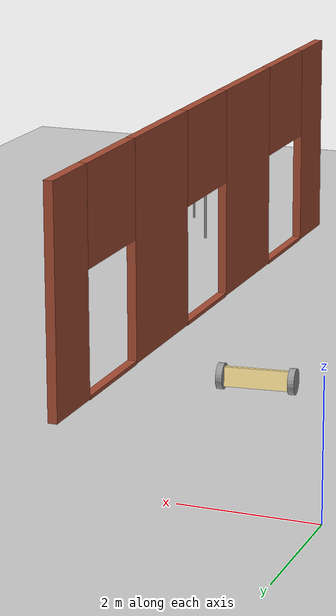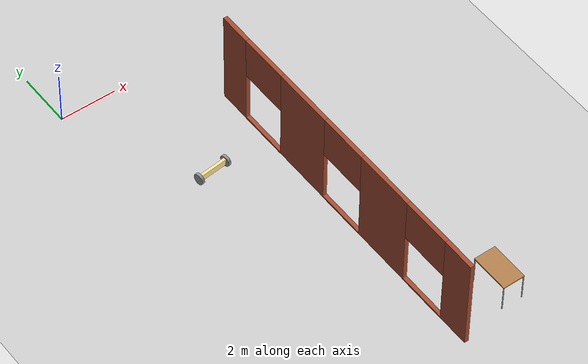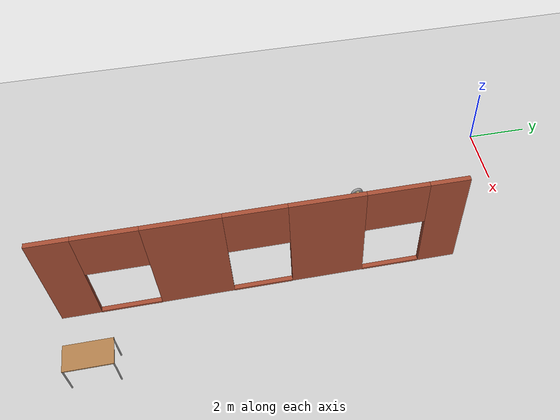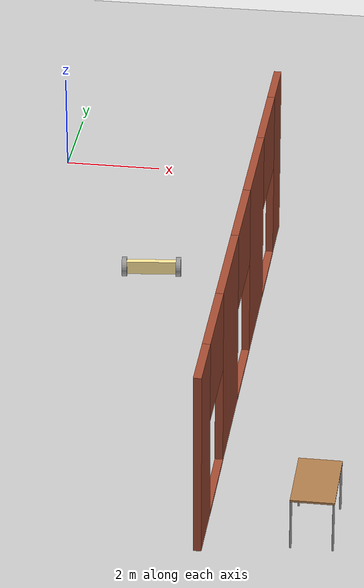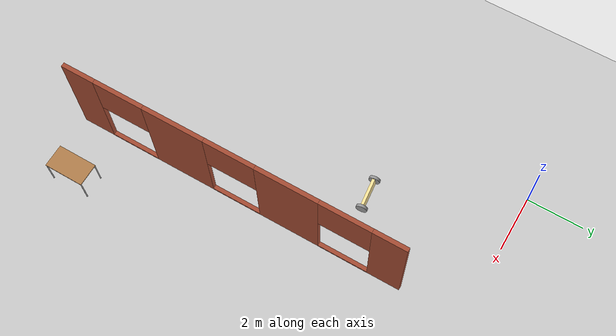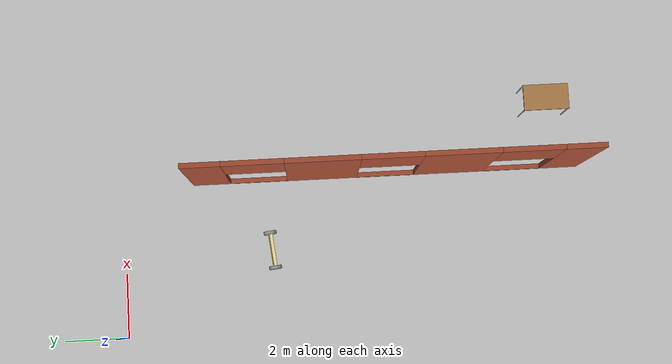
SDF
<sdf version="1.6">
 <world name="default">
  <model name="ground_plane">
   <static>1</static>
   <link name="link">
    <collision name="collision">
     <geometry><plane><normal>0 0 1</normal><size>100 100</size></plane></geometry>
     <surface><friction><ode><mu>100</mu><mu2>50</mu2></ode></friction></surface>
    </collision>
    <visual name="visual">
     <cast_shadows>0</cast_shadows>
     <geometry><plane><normal>0 0 1</normal><size>100 100</size></plane></geometry>
     <material>
      <script><uri>file://media/materials/scripts/gazebo.material</uri><name>Gazebo/Grey</name></script>
     </material>
    </visual>
   </link>
  </model>
  <model name="table_0">
   <static>0</static>
   <link name="link">
    <collision name="surface">
     <pose>0 0 1 0 -0 0</pose>
     <geometry><box><size>1.5 0.8 0.03</size></box></geometry>
     <surface><friction><ode><mu>0.6</mu><mu2>0.6</mu2></ode></friction></surface>
    </collision>
    <visual name="visual1">
     <pose>0 0 1 0 -0 0</pose>
     <geometry><box><size>1.4 0.8 0.04</size></box></geometry>
     <material>
      <script><uri>file://media/materials/scripts/gazebo.material</uri><name>Gazebo/Wood</name></script>
     </material>
    </visual>
    <collision name="front_left_leg">
     <pose>0.68 0.38 0.5 0 -0 0</pose>
     <geometry><cylinder><radius>0.02</radius><length>1</length></cylinder></geometry>
    </collision>
    <visual name="front_left_leg">
     <pose>0.68 0.38 0.5 0 -0 0</pose>
     <geometry><cylinder><radius>0.02</radius><length>1</length></cylinder></geometry>
     <material>
      <script><uri>file://media/materials/scripts/gazebo.material</uri><name>Gazebo/Grey</name></script>
     </material>
    </visual>
    <collision name="front_right_leg">
     <pose>0.68 -0.38 0.5 0 -0 0</pose>
     <geometry><cylinder><radius>0.02</radius><length>1</length></cylinder></geometry>
    </collision>
    <visual name="front_right_leg">
     <pose>0.68 -0.38 0.5 0 -0 0</pose>
     <geometry><cylinder><radius>0.02</radius><length>1</length></cylinder></geometry>
     <material>
      <script><uri>file://media/materials/scripts/gazebo.material</uri><name>Gazebo/Grey</name></script>
     </material>
    </visual>
    <collision name="back_right_leg">
     <pose>-0.68 -0.38 0.5 0 -0 0</pose>
     <geometry><cylinder><radius>0.02</radius><length>1</length></cylinder></geometry>
    </collision>
    <visual name="back_right_leg">
     <pose>-0.68 -0.38 0.5 0 -0 0</pose>
     <geometry><cylinder><radius>0.02</radius><length>1</length></cylinder></geometry>
     <material>
      <script><uri>file://media/materials/scripts/gazebo.material</uri><name>Gazebo/Grey</name></script>
     </material>
    </visual>
    <collision name="back_left_leg">
     <pose>-0.68 0.38 0.5 0 -0 0</pose>
     <geometry><cylinder><radius>0.02</radius><length>1</length></cylinder></geometry>
    </collision>
    <visual name="back_left_leg">
     <pose>-0.68 0.38 0.5 0 -0 0</pose>
     <geometry><cylinder><radius>0.02</radius><length>1</length></cylinder></geometry>
     <material>
      <script><uri>file://media/materials/scripts/gazebo.material</uri><name>Gazebo/Grey</name></script>
     </material>
    </visual>
    <inertial>
     <inertia><ixx>1</ixx><ixy>0</ixy><ixz>0</ixz><iyy>1</iyy><iyz>0</iyz><izz>1</izz></inertia>
     <mass>1</mass>
    </inertial>
   </link>
   <pose>6.803 -13.3459 -3e-06 -2e-06 -2e-06 1.57</pose>
  </model>
  <model name="robot_0">
   <link name="link_0">
    <inertial>
     <mass>1.59387</mass>
     <inertia>
      <ixx>0.470249</ixx>
      <ixy>0</ixy>
      <ixz>0</ixz>
      <iyy>0.265646</iyy>
      <iyz>0</iyz>
      <izz>0.470249</izz>
     </inertia>
    </inertial>
    <visual name="visual">
     <geometry><box><size>0.3 1 0.1</size></box></geometry>
     <material>
      <lighting>1</lighting>
      <script><uri>file://media/materials/scripts/gazebo.material</uri><name>Gazebo/Grey</name></script>
      <ambient>1 0.9 0.6 1</ambient>
      <diffuse>1 0.9 0.6 1</diffuse>
      <specular>0.01 0.01 0.01 1</specular>
      <emissive>0 0 0 1</emissive>
      <shader type="vertex"><normal_map>__default__</normal_map></shader>
     </material>
    </visual>
    <collision name="collision">
     <geometry><box><size>0.3 1 0.1</size></box></geometry>
     <surface>
      <friction>
       <ode><mu>1</mu><mu2>1</mu2><fdir1>0 0 0</fdir1><slip1>0</slip1><slip2>0</slip2></ode>
       <torsional>
        <coefficient>1</coefficient>
        <patch_radius>0</patch_radius>
        <surface_radius>0</surface_radius>
        <use_patch_radius>1</use_patch_radius>
        <ode><slip>0</slip></ode>
       </torsional>
      </friction>
      <bounce><restitution_coefficient>0</restitution_coefficient><threshold>1e+06</threshold></bounce>
      <contact>
       <collide_without_contact>0</collide_without_contact>
       <collide_without_contact_bitmask>1</collide_without_contact_bitmask>
       <collide_bitmask>1</collide_bitmask>
       <ode>
        <soft_cfm>0</soft_cfm>
        <soft_erp>0.2</soft_erp>
        <kp>1e+13</kp>
        <kd>1</kd>
        <max_vel>0.01</max_vel>
        <min_depth>0</min_depth>
       </ode>
       <bullet>
        <split_impulse>1</split_impulse>
        <split_impulse_penetration_threshold>-0.01</split_impulse_penetration_threshold>
        <soft_cfm>0</soft_cfm>
        <soft_erp>0.2</soft_erp>
        <kp>1e+13</kp>
        <kd>1</kd>
       </bullet>
      </contact>
     </surface>
    </collision>
   </link>
   <link name="link_1">
    <pose>0 -0.550019 -0 1.5707 -0 0</pose>
    <inertial>
     <mass>1</mass>
     <inertia><ixx>0.145833</ixx><ixy>0</ixy><ixz>0</ixz><iyy>0.145833</iyy><iyz>0</iyz><izz>0.125</izz></inertia>
    </inertial>
    <visual name="visual">
     <geometry><cylinder><radius>0.2</radius><length>0.1</length></cylinder></geometry>
     <material>
      <lighting>1</lighting>
      <script><uri>file://media/materials/scripts/gazebo.material</uri><name>Gazebo/Grey</name></script>
      <ambient>0.5 0.5 0.5 1</ambient>
      <diffuse>0.5 0.5 0.5 1</diffuse>
      <specular>0.01 0.01 0.01 1</specular>
      <emissive>0 0 0 1</emissive>
      <shader type="vertex"><normal_map>__default__</normal_map></shader>
     </material>
    </visual>
    <collision name="collision">
     <geometry><cylinder><radius>0.2</radius><length>0.1</length></cylinder></geometry>
     <surface>
      <friction>
       <ode><mu>1</mu><mu2>1</mu2><fdir1>0 0 0</fdir1><slip1>0</slip1><slip2>0</slip2></ode>
       <torsional>
        <coefficient>1</coefficient>
        <patch_radius>0</patch_radius>
        <surface_radius>0</surface_radius>
        <use_patch_radius>1</use_patch_radius>
        <ode><slip>0</slip></ode>
       </torsional>
      </friction>
      <bounce><restitution_coefficient>0</restitution_coefficient><threshold>1e+06</threshold></bounce>
      <contact>
       <collide_without_contact>0</collide_without_contact>
       <collide_without_contact_bitmask>1</collide_without_contact_bitmask>
       <collide_bitmask>1</collide_bitmask>
       <ode>
        <soft_cfm>0</soft_cfm>
        <soft_erp>0.2</soft_erp>
        <kp>1e+13</kp>
        <kd>1</kd>
        <max_vel>0.01</max_vel>
        <min_depth>0</min_depth>
       </ode>
       <bullet>
        <split_impulse>1</split_impulse>
        <split_impulse_penetration_threshold>-0.01</split_impulse_penetration_threshold>
        <soft_cfm>0</soft_cfm>
        <soft_erp>0.2</soft_erp>
        <kp>1e+13</kp>
        <kd>1</kd>
       </bullet>
      </contact>
     </surface>
    </collision>
   </link>
   <link name="link_1_clone">
    <pose>-0 0.550019 0 1.5707 -0 0</pose>
    <inertial>
     <mass>1</mass>
     <inertia><ixx>0.145833</ixx><ixy>0</ixy><ixz>0</ixz><iyy>0.145833</iyy><iyz>0</iyz><izz>0.125</izz></inertia>
    </inertial>
    <visual name="visual">
     <geometry><cylinder><radius>0.2</radius><length>0.1</length></cylinder></geometry>
     <material>
      <lighting>1</lighting>
      <script><uri>file://media/materials/scripts/gazebo.material</uri><name>Gazebo/Grey</name></script>
      <ambient>0.5 0.5 0.5 1</ambient>
      <diffuse>0.5 0.5 0.5 1</diffuse>
      <specular>0.01 0.01 0.01 1</specular>
      <emissive>0 0 0 1</emissive>
      <shader type="vertex"><normal_map>__default__</normal_map></shader>
     </material>
    </visual>
    <collision name="collision">
     <geometry><cylinder><radius>0.2</radius><length>0.1</length></cylinder></geometry>
     <surface>
      <friction>
       <ode><mu>1</mu><mu2>1</mu2><fdir1>0 0 0</fdir1><slip1>0</slip1><slip2>0</slip2></ode>
       <torsional>
        <coefficient>1</coefficient>
        <patch_radius>0</patch_radius>
        <surface_radius>0</surface_radius>
        <use_patch_radius>1</use_patch_radius>
        <ode><slip>0</slip></ode>
       </torsional>
      </friction>
      <bounce><restitution_coefficient>0</restitution_coefficient><threshold>1e+06</threshold></bounce>
      <contact>
       <collide_without_contact>0</collide_without_contact>
       <collide_without_contact_bitmask>1</collide_without_contact_bitmask>
       <collide_bitmask>1</collide_bitmask>
       <ode>
        <soft_cfm>0</soft_cfm>
        <soft_erp>0.2</soft_erp>
        <kp>1e+13</kp>
        <kd>1</kd>
        <max_vel>0.01</max_vel>
        <min_depth>0</min_depth>
       </ode>
       <bullet>
        <split_impulse>1</split_impulse>
        <split_impulse_penetration_threshold>-0.01</split_impulse_penetration_threshold>
        <soft_cfm>0</soft_cfm>
        <soft_erp>0.2</soft_erp>
        <kp>1e+13</kp>
        <kd>1</kd>
       </bullet>
      </contact>
     </surface>
    </collision>
   </link>
   <joint name="link_0_JOINT_0" type="revolute">
    <parent>link_0</parent>
    <child>link_1</child>
    <axis>
     <xyz>0 0 1</xyz>
     <use_parent_model_frame>0</use_parent_model_frame>
     <limit>
      <lower>-1.79769e+308</lower>
      <upper>1.79769e+308</upper>
      <effort>-1</effort>
      <velocity>-1</velocity>
     </limit>
     <dynamics>
      <spring_reference>0</spring_reference>
      <spring_stiffness>0</spring_stiffness>
      <damping>0</damping>
      <friction>0</friction>
     </dynamics>
    </axis>
    <physics>
     <ode><limit><cfm>0</cfm><erp>0.2</erp></limit><suspension><cfm>0</cfm><erp>0.2</erp></suspension></ode>
    </physics>
   </joint>
   <joint name="link_0_JOINT_1" type="revolute">
    <parent>link_0</parent>
    <child>link_1_clone</child>
    <axis>
     <xyz>0 0 1</xyz>
     <use_parent_model_frame>0</use_parent_model_frame>
     <limit>
      <lower>-1.79769e+308</lower>
      <upper>1.79769e+308</upper>
      <effort>-1</effort>
      <velocity>-1</velocity>
     </limit>
     <dynamics>
      <spring_reference>0</spring_reference>
      <spring_stiffness>0</spring_stiffness>
      <damping>0</damping>
      <friction>0</friction>
     </dynamics>
    </axis>
    <physics>
     <ode><limit><cfm>0</cfm><erp>0.2</erp></limit><suspension><cfm>0</cfm><erp>0.2</erp></suspension></ode>
    </physics>
   </joint>
   <static>0</static>
   <pose>2.52428 -4.62436 0.199992 -3.14157 -1.4352 -1.46064</pose>
  </model>
  <model name="myfloorplan">
   <link name="Wall_46">
    <pose>6 -10 0 0 0 -1.5708</pose>
    <visual name="Wall_46_Visual_0">
     <pose>-5.4875 0 1.8 0 -0 0</pose>
     <geometry><box><size>1.175 0.15 3.6</size></box></geometry>
     <material>
      <script><uri>file://media/materials/scripts/gazebo.material</uri><name>Gazebo/Bricks</name></script>
      <ambient>0.333333 0.666667 1 1</ambient>
     </material>
    </visual>
    <visual name="Wall_46_Visual_1">
     <pose>-2 0 1.8 0 -0 0</pose>
     <geometry><box><size>2.2 0.15 3.6</size></box></geometry>
     <material>
      <script><uri>file://media/materials/scripts/gazebo.material</uri><name>Gazebo/Bricks</name></script>
      <ambient>0.333333 0.666667 1 1</ambient>
     </material>
    </visual>
    <visual name="Wall_46_Visual_2">
     <pose>2 0 1.8 0 -0 0</pose>
     <geometry><box><size>2.2 0.15 3.6</size></box></geometry>
     <material>
      <script><uri>file://media/materials/scripts/gazebo.material</uri><name>Gazebo/Bricks</name></script>
      <ambient>0.333333 0.666667 1 1</ambient>
     </material>
    </visual>
    <visual name="Wall_46_Visual_3">
     <pose>5.4875 0 1.8 0 -0 0</pose>
     <geometry><box><size>1.175 0.15 3.6</size></box></geometry>
     <material>
      <script><uri>file://media/materials/scripts/gazebo.material</uri><name>Gazebo/Bricks</name></script>
      <ambient>0.333333 0.666667 1 1</ambient>
     </material>
    </visual>
    <visual name="Wall_46_Visual_4">
     <pose>-4 0 0 0 -0 0</pose>
     <geometry><box><size>1.8 0.15 0.1</size></box></geometry>
     <material>
      <script><uri>file://media/materials/scripts/gazebo.material</uri><name>Gazebo/Bricks</name></script>
      <ambient>0.333333 0.666667 1 1</ambient>
     </material>
    </visual>
    <visual name="Wall_46_Visual_5">
     <geometry><box><size>1.8 0.15 0.1</size></box></geometry>
     <material>
      <script><uri>file://media/materials/scripts/gazebo.material</uri><name>Gazebo/Bricks</name></script>
      <ambient>0.333333 0.666667 1 1</ambient>
     </material>
    </visual>
    <visual name="Wall_46_Visual_6">
     <pose>4 0 0 0 -0 0</pose>
     <geometry><box><size>1.8 0.15 0.1</size></box></geometry>
     <material>
      <script><uri>file://media/materials/scripts/gazebo.material</uri><name>Gazebo/Bricks</name></script>
      <ambient>0.333333 0.666667 1 1</ambient>
     </material>
    </visual>
    <visual name="Wall_46_Visual_7">
     <pose>-4 0 2.8 0 -0 0</pose>
     <geometry><box><size>1.8 0.15 1.6</size></box></geometry>
     <material>
      <script><uri>file://media/materials/scripts/gazebo.material</uri><name>Gazebo/Bricks</name></script>
      <ambient>0.333333 0.666667 1 1</ambient>
     </material>
    </visual>
    <visual name="Wall_46_Visual_8">
     <pose>-0 0 2.8 0 -0 0</pose>
     <geometry><box><size>1.8 0.15 1.6</size></box></geometry>
     <material>
      <script><uri>file://media/materials/scripts/gazebo.material</uri><name>Gazebo/Bricks</name></script>
      <ambient>0.333333 0.666667 1 1</ambient>
     </material>
    </visual>
    <visual name="Wall_46_Visual_9">
     <pose>4 0 2.8 0 -0 0</pose>
     <geometry><box><size>1.8 0.15 1.6</size></box></geometry>
     <material>
      <script><uri>file://media/materials/scripts/gazebo.material</uri><name>Gazebo/Bricks</name></script>
      <ambient>0.333333 0.666667 1 1</ambient>
     </material>
    </visual>
    <collision name="Wall_46_Collision_0">
     <pose>-5.4875 0 1.8 0 -0 0</pose>
     <geometry><box><size>1.175 0.15 3.6</size></box></geometry>
     <surface>
      <friction>
       <ode><mu>1</mu><mu2>1</mu2><fdir1>0 0 0</fdir1><slip1>0</slip1><slip2>0</slip2></ode>
       <torsional>
        <coefficient>1</coefficient>
        <patch_radius>0</patch_radius>
        <surface_radius>0</surface_radius>
        <use_patch_radius>1</use_patch_radius>
        <ode><slip>0</slip></ode>
       </torsional>
      </friction>
      <bounce><restitution_coefficient>0</restitution_coefficient><threshold>1e+06</threshold></bounce>
      <contact>
       <collide_without_contact>0</collide_without_contact>
       <collide_without_contact_bitmask>1</collide_without_contact_bitmask>
       <collide_bitmask>1</collide_bitmask>
       <ode>
        <soft_cfm>0</soft_cfm>
        <soft_erp>0.2</soft_erp>
        <kp>1e+13</kp>
        <kd>1</kd>
        <max_vel>0.01</max_vel>
        <min_depth>0</min_depth>
       </ode>
       <bullet>
        <split_impulse>1</split_impulse>
        <split_impulse_penetration_threshold>-0.01</split_impulse_penetration_threshold>
        <soft_cfm>0</soft_cfm>
        <soft_erp>0.2</soft_erp>
        <kp>1e+13</kp>
        <kd>1</kd>
       </bullet>
      </contact>
     </surface>
    </collision>
    <collision name="Wall_46_Collision_1">
     <pose>-2 0 1.8 0 -0 0</pose>
     <geometry><box><size>2.2 0.15 3.6</size></box></geometry>
     <surface>
      <friction>
       <ode><mu>1</mu><mu2>1</mu2><fdir1>0 0 0</fdir1><slip1>0</slip1><slip2>0</slip2></ode>
       <torsional>
        <coefficient>1</coefficient>
        <patch_radius>0</patch_radius>
        <surface_radius>0</surface_radius>
        <use_patch_radius>1</use_patch_radius>
        <ode><slip>0</slip></ode>
       </torsional>
      </friction>
      <bounce><restitution_coefficient>0</restitution_coefficient><threshold>1e+06</threshold></bounce>
      <contact>
       <collide_without_contact>0</collide_without_contact>
       <collide_without_contact_bitmask>1</collide_without_contact_bitmask>
       <collide_bitmask>1</collide_bitmask>
       <ode>
        <soft_cfm>0</soft_cfm>
        <soft_erp>0.2</soft_erp>
        <kp>1e+13</kp>
        <kd>1</kd>
        <max_vel>0.01</max_vel>
        <min_depth>0</min_depth>
       </ode>
       <bullet>
        <split_impulse>1</split_impulse>
        <split_impulse_penetration_threshold>-0.01</split_impulse_penetration_threshold>
        <soft_cfm>0</soft_cfm>
        <soft_erp>0.2</soft_erp>
        <kp>1e+13</kp>
        <kd>1</kd>
       </bullet>
      </contact>
     </surface>
    </collision>
    <collision name="Wall_46_Collision_2">
     <pose>2 0 1.8 0 -0 0</pose>
     <geometry><box><size>2.2 0.15 3.6</size></box></geometry>
     <surface>
      <friction>
       <ode><mu>1</mu><mu2>1</mu2><fdir1>0 0 0</fdir1><slip1>0</slip1><slip2>0</slip2></ode>
       <torsional>
        <coefficient>1</coefficient>
        <patch_radius>0</patch_radius>
        <surface_radius>0</surface_radius>
        <use_patch_radius>1</use_patch_radius>
        <ode><slip>0</slip></ode>
       </torsional>
      </friction>
      <bounce><restitution_coefficient>0</restitution_coefficient><threshold>1e+06</threshold></bounce>
      <contact>
       <collide_without_contact>0</collide_without_contact>
       <collide_without_contact_bitmask>1</collide_without_contact_bitmask>
       <collide_bitmask>1</collide_bitmask>
       <ode>
        <soft_cfm>0</soft_cfm>
        <soft_erp>0.2</soft_erp>
        <kp>1e+13</kp>
        <kd>1</kd>
        <max_vel>0.01</max_vel>
        <min_depth>0</min_depth>
       </ode>
       <bullet>
        <split_impulse>1</split_impulse>
        <split_impulse_penetration_threshold>-0.01</split_impulse_penetration_threshold>
        <soft_cfm>0</soft_cfm>
        <soft_erp>0.2</soft_erp>
        <kp>1e+13</kp>
        <kd>1</kd>
       </bullet>
      </contact>
     </surface>
    </collision>
    <collision name="Wall_46_Collision_3">
     <pose>5.4875 0 1.8 0 -0 0</pose>
     <geometry><box><size>1.175 0.15 3.6</size></box></geometry>
     <surface>
      <friction>
       <ode><mu>1</mu><mu2>1</mu2><fdir1>0 0 0</fdir1><slip1>0</slip1><slip2>0</slip2></ode>
       <torsional>
        <coefficient>1</coefficient>
        <patch_radius>0</patch_radius>
        <surface_radius>0</surface_radius>
        <use_patch_radius>1</use_patch_radius>
        <ode><slip>0</slip></ode>
       </torsional>
      </friction>
      <bounce><restitution_coefficient>0</restitution_coefficient><threshold>1e+06</threshold></bounce>
      <contact>
       <collide_without_contact>0</collide_without_contact>
       <collide_without_contact_bitmask>1</collide_without_contact_bitmask>
       <collide_bitmask>1</collide_bitmask>
       <ode>
        <soft_cfm>0</soft_cfm>
        <soft_erp>0.2</soft_erp>
        <kp>1e+13</kp>
        <kd>1</kd>
        <max_vel>0.01</max_vel>
        <min_depth>0</min_depth>
       </ode>
       <bullet>
        <split_impulse>1</split_impulse>
        <split_impulse_penetration_threshold>-0.01</split_impulse_penetration_threshold>
        <soft_cfm>0</soft_cfm>
        <soft_erp>0.2</soft_erp>
        <kp>1e+13</kp>
        <kd>1</kd>
       </bullet>
      </contact>
     </surface>
    </collision>
    <collision name="Wall_46_Collision_4">
     <pose>-4 0 0 0 -0 0</pose>
     <geometry><box><size>1.8 0.15 0.1</size></box></geometry>
     <surface>
      <friction>
       <ode><mu>1</mu><mu2>1</mu2><fdir1>0 0 0</fdir1><slip1>0</slip1><slip2>0</slip2></ode>
       <torsional>
        <coefficient>1</coefficient>
        <patch_radius>0</patch_radius>
        <surface_radius>0</surface_radius>
        <use_patch_radius>1</use_patch_radius>
        <ode><slip>0</slip></ode>
       </torsional>
      </friction>
      <bounce><restitution_coefficient>0</restitution_coefficient><threshold>1e+06</threshold></bounce>
      <contact>
       <collide_without_contact>0</collide_without_contact>
       <collide_without_contact_bitmask>1</collide_without_contact_bitmask>
       <collide_bitmask>1</collide_bitmask>
       <ode>
        <soft_cfm>0</soft_cfm>
        <soft_erp>0.2</soft_erp>
        <kp>1e+13</kp>
        <kd>1</kd>
        <max_vel>0.01</max_vel>
        <min_depth>0</min_depth>
       </ode>
       <bullet>
        <split_impulse>1</split_impulse>
        <split_impulse_penetration_threshold>-0.01</split_impulse_penetration_threshold>
        <soft_cfm>0</soft_cfm>
        <soft_erp>0.2</soft_erp>
        <kp>1e+13</kp>
        <kd>1</kd>
       </bullet>
      </contact>
     </surface>
    </collision>
    <collision name="Wall_46_Collision_5">
     <geometry><box><size>1.8 0.15 0.1</size></box></geometry>
     <surface>
      <friction>
       <ode><mu>1</mu><mu2>1</mu2><fdir1>0 0 0</fdir1><slip1>0</slip1><slip2>0</slip2></ode>
       <torsional>
        <coefficient>1</coefficient>
        <patch_radius>0</patch_radius>
        <surface_radius>0</surface_radius>
        <use_patch_radius>1</use_patch_radius>
        <ode><slip>0</slip></ode>
       </torsional>
      </friction>
      <bounce><restitution_coefficient>0</restitution_coefficient><threshold>1e+06</threshold></bounce>
      <contact>
       <collide_without_contact>0</collide_without_contact>
       <collide_without_contact_bitmask>1</collide_without_contact_bitmask>
       <collide_bitmask>1</collide_bitmask>
       <ode>
        <soft_cfm>0</soft_cfm>
        <soft_erp>0.2</soft_erp>
        <kp>1e+13</kp>
        <kd>1</kd>
        <max_vel>0.01</max_vel>
        <min_depth>0</min_depth>
       </ode>
       <bullet>
        <split_impulse>1</split_impulse>
        <split_impulse_penetration_threshold>-0.01</split_impulse_penetration_threshold>
        <soft_cfm>0</soft_cfm>
        <soft_erp>0.2</soft_erp>
        <kp>1e+13</kp>
        <kd>1</kd>
       </bullet>
      </contact>
     </surface>
    </collision>
    <collision name="Wall_46_Collision_6">
     <pose>4 0 0 0 -0 0</pose>
     <geometry><box><size>1.8 0.15 0.1</size></box></geometry>
     <surface>
      <friction>
       <ode><mu>1</mu><mu2>1</mu2><fdir1>0 0 0</fdir1><slip1>0</slip1><slip2>0</slip2></ode>
       <torsional>
        <coefficient>1</coefficient>
        <patch_radius>0</patch_radius>
        <surface_radius>0</surface_radius>
        <use_patch_radius>1</use_patch_radius>
        <ode><slip>0</slip></ode>
       </torsional>
      </friction>
      <bounce><restitution_coefficient>0</restitution_coefficient><threshold>1e+06</threshold></bounce>
      <contact>
       <collide_without_contact>0</collide_without_contact>
       <collide_without_contact_bitmask>1</collide_without_contact_bitmask>
       <collide_bitmask>1</collide_bitmask>
       <ode>
        <soft_cfm>0</soft_cfm>
        <soft_erp>0.2</soft_erp>
        <kp>1e+13</kp>
        <kd>1</kd>
        <max_vel>0.01</max_vel>
        <min_depth>0</min_depth>
       </ode>
       <bullet>
        <split_impulse>1</split_impulse>
        <split_impulse_penetration_threshold>-0.01</split_impulse_penetration_threshold>
        <soft_cfm>0</soft_cfm>
        <soft_erp>0.2</soft_erp>
        <kp>1e+13</kp>
        <kd>1</kd>
       </bullet>
      </contact>
     </surface>
    </collision>
    <collision name="Wall_46_Collision_7">
     <pose>-4 0 2.8 0 -0 0</pose>
     <geometry><box><size>1.8 0.15 1.6</size></box></geometry>
     <surface>
      <friction>
       <ode><mu>1</mu><mu2>1</mu2><fdir1>0 0 0</fdir1><slip1>0</slip1><slip2>0</slip2></ode>
       <torsional>
        <coefficient>1</coefficient>
        <patch_radius>0</patch_radius>
        <surface_radius>0</surface_radius>
        <use_patch_radius>1</use_patch_radius>
        <ode><slip>0</slip></ode>
       </torsional>
      </friction>
      <bounce><restitution_coefficient>0</restitution_coefficient><threshold>1e+06</threshold></bounce>
      <contact>
       <collide_without_contact>0</collide_without_contact>
       <collide_without_contact_bitmask>1</collide_without_contact_bitmask>
       <collide_bitmask>1</collide_bitmask>
       <ode>
        <soft_cfm>0</soft_cfm>
        <soft_erp>0.2</soft_erp>
        <kp>1e+13</kp>
        <kd>1</kd>
        <max_vel>0.01</max_vel>
        <min_depth>0</min_depth>
       </ode>
       <bullet>
        <split_impulse>1</split_impulse>
        <split_impulse_penetration_threshold>-0.01</split_impulse_penetration_threshold>
        <soft_cfm>0</soft_cfm>
        <soft_erp>0.2</soft_erp>
        <kp>1e+13</kp>
        <kd>1</kd>
       </bullet>
      </contact>
     </surface>
    </collision>
    <collision name="Wall_46_Collision_8">
     <pose>0 0 2.8 0 -0 0</pose>
     <geometry><box><size>1.8 0.15 1.6</size></box></geometry>
     <surface>
      <friction>
       <ode><mu>1</mu><mu2>1</mu2><fdir1>0 0 0</fdir1><slip1>0</slip1><slip2>0</slip2></ode>
       <torsional>
        <coefficient>1</coefficient>
        <patch_radius>0</patch_radius>
        <surface_radius>0</surface_radius>
        <use_patch_radius>1</use_patch_radius>
        <ode><slip>0</slip></ode>
       </torsional>
      </friction>
      <bounce><restitution_coefficient>0</restitution_coefficient><threshold>1e+06</threshold></bounce>
      <contact>
       <collide_without_contact>0</collide_without_contact>
       <collide_without_contact_bitmask>1</collide_without_contact_bitmask>
       <collide_bitmask>1</collide_bitmask>
       <ode>
        <soft_cfm>0</soft_cfm>
        <soft_erp>0.2</soft_erp>
        <kp>1e+13</kp>
        <kd>1</kd>
        <max_vel>0.01</max_vel>
        <min_depth>0</min_depth>
       </ode>
       <bullet>
        <split_impulse>1</split_impulse>
        <split_impulse_penetration_threshold>-0.01</split_impulse_penetration_threshold>
        <soft_cfm>0</soft_cfm>
        <soft_erp>0.2</soft_erp>
        <kp>1e+13</kp>
        <kd>1</kd>
       </bullet>
      </contact>
     </surface>
    </collision>
    <collision name="Wall_46_Collision_9">
     <pose>4 0 2.8 0 -0 0</pose>
     <geometry><box><size>1.8 0.15 1.6</size></box></geometry>
     <surface>
      <friction>
       <ode><mu>1</mu><mu2>1</mu2><fdir1>0 0 0</fdir1><slip1>0</slip1><slip2>0</slip2></ode>
       <torsional>
        <coefficient>1</coefficient>
        <patch_radius>0</patch_radius>
        <surface_radius>0</surface_radius>
        <use_patch_radius>1</use_patch_radius>
        <ode><slip>0</slip></ode>
       </torsional>
      </friction>
      <bounce><restitution_coefficient>0</restitution_coefficient><threshold>1e+06</threshold></bounce>
      <contact>
       <collide_without_contact>0</collide_without_contact>
       <collide_without_contact_bitmask>1</collide_without_contact_bitmask>
       <collide_bitmask>1</collide_bitmask>
       <ode>
        <soft_cfm>0</soft_cfm>
        <soft_erp>0.2</soft_erp>
        <kp>1e+13</kp>
        <kd>1</kd>
        <max_vel>0.01</max_vel>
        <min_depth>0</min_depth>
       </ode>
       <bullet>
        <split_impulse>1</split_impulse>
        <split_impulse_penetration_threshold>-0.01</split_impulse_penetration_threshold>
        <soft_cfm>0</soft_cfm>
        <soft_erp>0.2</soft_erp>
        <kp>1e+13</kp>
        <kd>1</kd>
       </bullet>
      </contact>
     </surface>
    </collision>
   </link>
   <static>1</static>
   <pose>-1.20922 1.7115 0 0 -0 0</pose>
  </model>
 </world>
</sdf>
